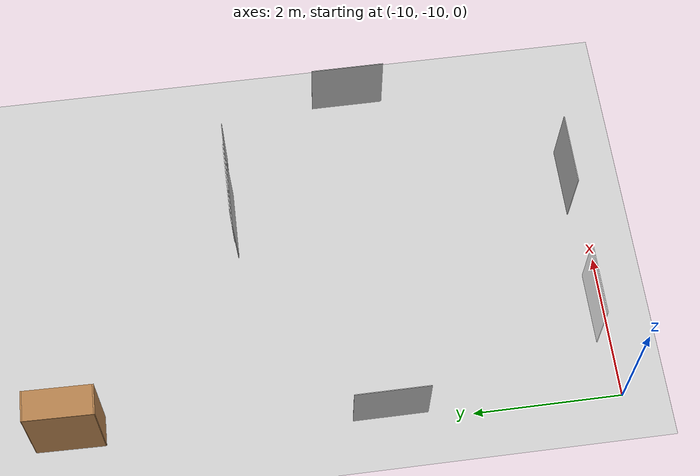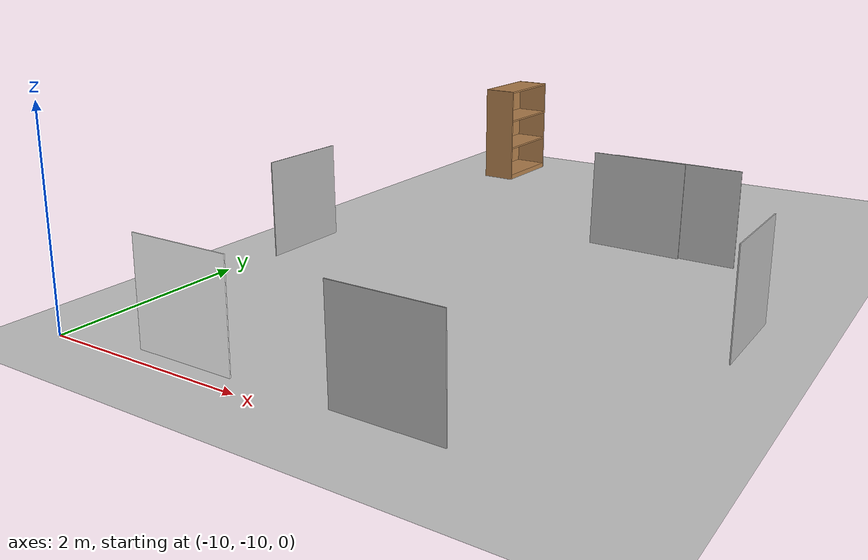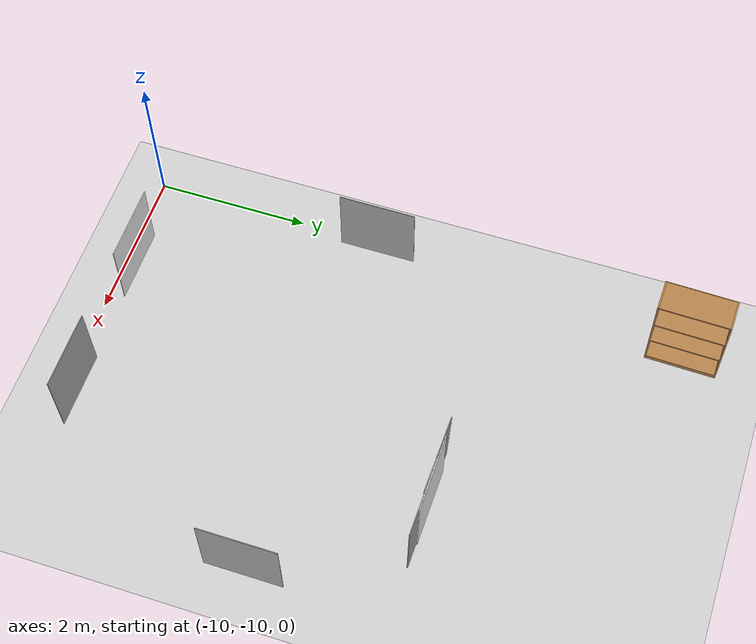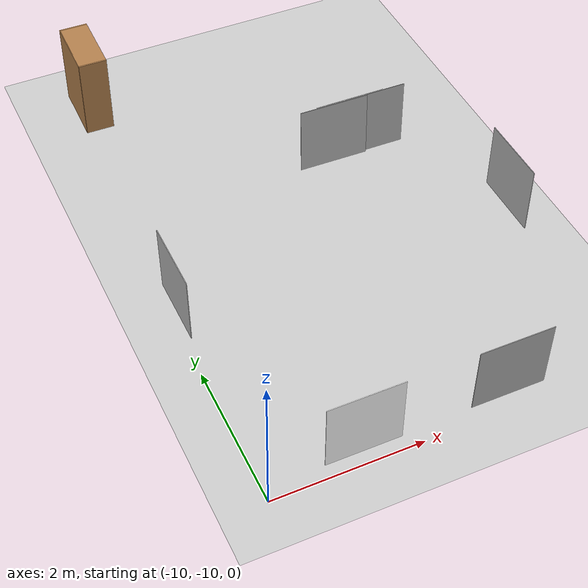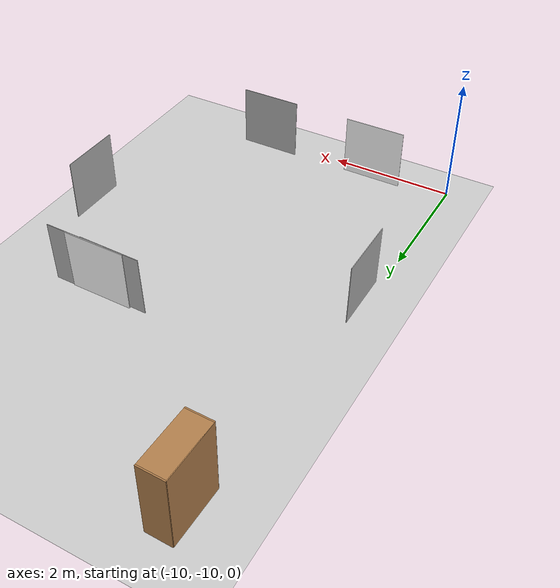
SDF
<sdf version="1.6">
 <world name="default">
  <model name="ground_plane">
   <static>1</static>
   <link name="link">
    <collision name="collision">
     <geometry><plane><normal>0 0 1</normal><size>100 100</size></plane></geometry>
     <surface><friction><ode><mu>100</mu><mu2>50</mu2></ode></friction></surface>
    </collision>
    <visual name="visual">
     <cast_shadows>0</cast_shadows>
     <geometry><plane><normal>0 0 1</normal><size>100 100</size></plane></geometry>
     <material>
      <script><uri>file://media/materials/scripts/gazebo.material</uri><name>Gazebo/Grey</name></script>
     </material>
    </visual>
   </link>
  </model>
  <model name="bookshelf">
   <static>1</static>
   <link name="link">
    <inertial><mass>1</mass></inertial>
    <collision name="back">
     <pose>0 0.005 0.6 0 -0 0</pose>
     <geometry><box><size>0.9 0.01 1.2</size></box></geometry>
    </collision>
    <visual name="visual1">
     <pose>0 0.005 0.6 0 -0 0</pose>
     <geometry><box><size>0.9 0.01 1.2</size></box></geometry>
     <material>
      <script><uri>file://media/materials/scripts/gazebo.material</uri><name>Gazebo/Wood</name></script>
     </material>
    </visual>
    <collision name="left_side">
     <pose>0.45 -0.195 0.6 0 -0 0</pose>
     <geometry><box><size>0.02 0.4 1.2</size></box></geometry>
    </collision>
    <visual name="visual2">
     <pose>0.45 -0.195 0.6 0 -0 0</pose>
     <geometry><box><size>0.02 0.4 1.2</size></box></geometry>
     <material>
      <script><uri>file://media/materials/scripts/gazebo.material</uri><name>Gazebo/Wood</name></script>
     </material>
    </visual>
    <collision name="right_side">
     <pose>-0.45 -0.195 0.6 0 -0 0</pose>
     <geometry><box><size>0.02 0.4 1.2</size></box></geometry>
    </collision>
    <visual name="visual3">
     <pose>-0.45 -0.195 0.6 0 -0 0</pose>
     <geometry><box><size>0.02 0.4 1.2</size></box></geometry>
     <material>
      <script><uri>file://media/materials/scripts/gazebo.material</uri><name>Gazebo/Wood</name></script>
     </material>
    </visual>
    <collision name="bottom">
     <pose>0 -0.195 0.03 0 -0 0</pose>
     <geometry><box><size>0.88 0.4 0.06</size></box></geometry>
    </collision>
    <visual name="visual4">
     <pose>0 -0.195 0.03 0 -0 0</pose>
     <geometry><box><size>0.88 0.4 0.06</size></box></geometry>
     <material>
      <script><uri>file://media/materials/scripts/gazebo.material</uri><name>Gazebo/Wood</name></script>
     </material>
    </visual>
    <collision name="top">
     <pose>0 -0.195 1.19 0 -0 0</pose>
     <geometry><box><size>0.88 0.4 0.02</size></box></geometry>
    </collision>
    <visual name="visual5">
     <pose>0 -0.195 1.19 0 -0 0</pose>
     <geometry><box><size>0.88 0.4 0.02</size></box></geometry>
     <material>
      <script><uri>file://media/materials/scripts/gazebo.material</uri><name>Gazebo/Wood</name></script>
     </material>
    </visual>
    <collision name="low_shelf">
     <pose>0 -0.195 0.43 0 -0 0</pose>
     <geometry><box><size>0.88 0.4 0.02</size></box></geometry>
    </collision>
    <visual name="visual6">
     <pose>0 -0.195 0.43 0 -0 0</pose>
     <geometry><box><size>0.88 0.4 0.02</size></box></geometry>
     <material>
      <script><uri>file://media/materials/scripts/gazebo.material</uri><name>Gazebo/Wood</name></script>
     </material>
    </visual>
    <collision name="high_shelf">
     <pose>0 -0.195 0.8 0 -0 0</pose>
     <geometry><box><size>0.88 0.4 0.02</size></box></geometry>
    </collision>
    <visual name="visual7">
     <pose>0 -0.195 0.8 0 -0 0</pose>
     <geometry><box><size>0.88 0.4 0.02</size></box></geometry>
     <material>
      <script><uri>file://media/materials/scripts/gazebo.material</uri><name>Gazebo/Wood</name></script>
     </material>
    </visual>
   </link>
   <pose>-9.80012 -2.72902 0 0 -0 1.5503</pose>
  </model>
  <model name="electric_plug_1_4">
   <link name="link_0">
    <pose>4e-06 0 0 0 -0 0</pose>
    <inertial>
     <mass>1</mass>
     <inertia>
      <ixx>0.166667</ixx>
      <ixy>0</ixy>
      <ixz>0</ixz>
      <iyy>0.166667</iyy>
      <iyz>0</iyz>
      <izz>0.166667</izz>
     </inertia>
    </inertial>
    <visual name="visual">
     <geometry><box><size>0.01 1 1</size></box></geometry>
     <material>
      <lighting>1</lighting>
      <script>
       <uri>model://electric_plug_2_S/materials/scripts</uri>
       <uri>model://electric_plug_2_S/materials/textures</uri>
       <name>Electric/Plug2S</name>
      </script>
      <ambient>0.3 0.3 0.3 1</ambient>
      <diffuse>0.7 0.7 0.7 1</diffuse>
      <specular>0.01 0.01 0.01 1</specular>
      <emissive>1 1 1 1</emissive>
     </material>
     <cast_shadows>0</cast_shadows>
    </visual>
    <collision name="collision">
     <geometry><box><size>0.01 1 1</size></box></geometry>
     <surface>
      <friction>
       <ode><mu>1</mu><mu2>1</mu2><fdir1>0 0 0</fdir1><slip1>0</slip1><slip2>0</slip2></ode>
       <torsional>
        <coefficient>1</coefficient>
        <patch_radius>0</patch_radius>
        <surface_radius>0</surface_radius>
        <use_patch_radius>1</use_patch_radius>
        <ode><slip>0</slip></ode>
       </torsional>
      </friction>
      <bounce><restitution_coefficient>0</restitution_coefficient><threshold>1e+06</threshold></bounce>
      <contact>
       <collide_without_contact>0</collide_without_contact>
       <collide_without_contact_bitmask>1</collide_without_contact_bitmask>
       <collide_bitmask>1</collide_bitmask>
       <ode>
        <soft_cfm>0</soft_cfm>
        <soft_erp>0.2</soft_erp>
        <kp>1e+13</kp>
        <kd>1</kd>
        <max_vel>0.01</max_vel>
        <min_depth>0</min_depth>
       </ode>
       <bullet>
        <split_impulse>1</split_impulse>
        <split_impulse_penetration_threshold>-0.01</split_impulse_penetration_threshold>
        <soft_cfm>0</soft_cfm>
        <soft_erp>0.2</soft_erp>
        <kp>1e+13</kp>
        <kd>1</kd>
       </bullet>
      </contact>
     </surface>
    </collision>
   </link>
   <static>0</static>
   <pose>-5.10272 -6.97588 0.5 0 -6e-06 4e-06</pose>
  </model>
  <model name="electric_plug_3_N">
   <link name="link_0">
    <pose>4e-06 0 0 0 -0 0</pose>
    <inertial>
     <mass>1</mass>
     <inertia>
      <ixx>0.166667</ixx>
      <ixy>0</ixy>
      <ixz>0</ixz>
      <iyy>0.166667</iyy>
      <iyz>0</iyz>
      <izz>0.166667</izz>
     </inertia>
    </inertial>
    <visual name="visual">
     <geometry><box><size>0.01 1 1</size></box></geometry>
     <material>
      <lighting>1</lighting>
      <script>
       <uri>model://electric_plug_3_N/materials/scripts</uri>
       <uri>model://electric_plug_3_N/materials/textures</uri>
       <name>Electric/Plug3N</name>
      </script>
      <ambient>0.3 0.3 0.3 1</ambient>
      <diffuse>0.7 0.7 0.7 1</diffuse>
      <specular>0.01 0.01 0.01 1</specular>
      <emissive>1 1 1 1</emissive>
     </material>
    </visual>
    <collision name="collision">
     <geometry><box><size>0.01 1 1</size></box></geometry>
     <surface>
      <friction>
       <ode><mu>1</mu><mu2>1</mu2><fdir1>0 0 0</fdir1><slip1>0</slip1><slip2>0</slip2></ode>
       <torsional>
        <coefficient>1</coefficient>
        <patch_radius>0</patch_radius>
        <surface_radius>0</surface_radius>
        <use_patch_radius>1</use_patch_radius>
        <ode><slip>0</slip></ode>
       </torsional>
      </friction>
      <bounce><restitution_coefficient>0</restitution_coefficient><threshold>1e+06</threshold></bounce>
      <contact>
       <collide_without_contact>0</collide_without_contact>
       <collide_without_contact_bitmask>1</collide_without_contact_bitmask>
       <collide_bitmask>1</collide_bitmask>
       <ode>
        <soft_cfm>0</soft_cfm>
        <soft_erp>0.2</soft_erp>
        <kp>1e+13</kp>
        <kd>1</kd>
        <max_vel>0.01</max_vel>
        <min_depth>0</min_depth>
       </ode>
       <bullet>
        <split_impulse>1</split_impulse>
        <split_impulse_penetration_threshold>-0.01</split_impulse_penetration_threshold>
        <soft_cfm>0</soft_cfm>
        <soft_erp>0.2</soft_erp>
        <kp>1e+13</kp>
        <kd>1</kd>
       </bullet>
      </contact>
     </surface>
    </collision>
   </link>
   <static>0</static>
   <pose>-6.76501 -9.80279 0.500009 9e-06 -0.016688 1.5708</pose>
  </model>
  <model name="electric_plug_1_S">
   <link name="link_0">
    <pose>4e-06 0 0 0 -0 0</pose>
    <inertial>
     <mass>1</mass>
     <inertia>
      <ixx>0.166667</ixx>
      <ixy>0</ixy>
      <ixz>0</ixz>
      <iyy>0.166667</iyy>
      <iyz>0</iyz>
      <izz>0.166667</izz>
     </inertia>
    </inertial>
    <visual name="visual">
     <geometry><box><size>0.01 1 1</size></box></geometry>
     <material>
      <lighting>1</lighting>
      <script>
       <uri>model://electric_plug_1_S/materials/scripts</uri>
       <uri>model://electric_plug_1_S/materials/textures</uri>
       <name>Electric/Plug1S</name>
      </script>
      <ambient>0.3 0.3 0.3 1</ambient>
      <diffuse>0.7 0.7 0.7 1</diffuse>
      <specular>0.01 0.01 0.01 1</specular>
      <emissive>1 1 1 1</emissive>
     </material>
     <cast_shadows>0</cast_shadows>
    </visual>
    <collision name="collision">
     <geometry><box><size>0.01 1 1</size></box></geometry>
     <surface>
      <friction>
       <ode><mu>1</mu><mu2>1</mu2><fdir1>0 0 0</fdir1><slip1>0</slip1><slip2>0</slip2></ode>
       <torsional>
        <coefficient>1</coefficient>
        <patch_radius>0</patch_radius>
        <surface_radius>0</surface_radius>
        <use_patch_radius>1</use_patch_radius>
        <ode><slip>0</slip></ode>
       </torsional>
      </friction>
      <bounce><restitution_coefficient>0</restitution_coefficient><threshold>1e+06</threshold></bounce>
      <contact>
       <collide_without_contact>0</collide_without_contact>
       <collide_without_contact_bitmask>1</collide_without_contact_bitmask>
       <collide_bitmask>1</collide_bitmask>
       <ode>
        <soft_cfm>0</soft_cfm>
        <soft_erp>0.2</soft_erp>
        <kp>1e+13</kp>
        <kd>1</kd>
        <max_vel>0.01</max_vel>
        <min_depth>0</min_depth>
       </ode>
       <bullet>
        <split_impulse>1</split_impulse>
        <split_impulse_penetration_threshold>-0.01</split_impulse_penetration_threshold>
        <soft_cfm>0</soft_cfm>
        <soft_erp>0.2</soft_erp>
        <kp>1e+13</kp>
        <kd>1</kd>
       </bullet>
      </contact>
     </surface>
    </collision>
   </link>
   <static>0</static>
   <pose>-9.89865 -6.91577 0.500019 0 -0.014776 -4e-06</pose>
  </model>
  <model name="Gas_5">
   <link name="link_0">
    <pose>4e-06 0 0 0 -0 0</pose>
    <inertial>
     <mass>1</mass>
     <inertia>
      <ixx>0.166667</ixx>
      <ixy>0</ixy>
      <ixz>0</ixz>
      <iyy>0.166667</iyy>
      <iyz>0</iyz>
      <izz>0.166667</izz>
     </inertia>
    </inertial>
    <visual name="visual">
     <geometry><box><size>0.01 1 1</size></box></geometry>
     <material>
      <lighting>1</lighting>
      <script>
       <uri>model://gas_5_N/materials/scripts</uri>
       <uri>model://gas_5_N/materials/textures</uri>
       <name>Gas/Gas5N</name>
      </script>
      <ambient>1 1 1 1</ambient>
      <diffuse>1 1 1 1</diffuse>
      <specular>0.01 0.01 0.01 1</specular>
      <emissive>1 1 1 1</emissive>
     </material>
     <cast_shadows>0</cast_shadows>
    </visual>
    <collision name="collision">
     <geometry><box><size>0.01 1 1</size></box></geometry>
     <surface>
      <friction>
       <ode><mu>1</mu><mu2>1</mu2><fdir1>0 0 0</fdir1><slip1>0</slip1><slip2>0</slip2></ode>
       <torsional>
        <coefficient>1</coefficient>
        <patch_radius>0</patch_radius>
        <surface_radius>0</surface_radius>
        <use_patch_radius>1</use_patch_radius>
        <ode><slip>0</slip></ode>
       </torsional>
      </friction>
      <bounce><restitution_coefficient>0</restitution_coefficient><threshold>1e+06</threshold></bounce>
      <contact>
       <collide_without_contact>0</collide_without_contact>
       <collide_without_contact_bitmask>1</collide_without_contact_bitmask>
       <collide_bitmask>1</collide_bitmask>
       <ode>
        <soft_cfm>0</soft_cfm>
        <soft_erp>0.2</soft_erp>
        <kp>1e+13</kp>
        <kd>1</kd>
        <max_vel>0.01</max_vel>
        <min_depth>0</min_depth>
       </ode>
       <bullet>
        <split_impulse>1</split_impulse>
        <split_impulse_penetration_threshold>-0.01</split_impulse_penetration_threshold>
        <soft_cfm>0</soft_cfm>
        <soft_erp>0.2</soft_erp>
        <kp>1e+13</kp>
        <kd>1</kd>
       </bullet>
      </contact>
     </surface>
    </collision>
   </link>
   <static>0</static>
   <pose>-6.59286 -5.14286 0.499983 1e-06 -0.021573 -1.58001</pose>
  </model>
  <model name="fire_2_0">
   <link name="link_0">
    <pose>4e-06 0 0 0 -0 0</pose>
    <inertial>
     <mass>1</mass>
     <inertia>
      <ixx>0.166667</ixx>
      <ixy>0</ixy>
      <ixz>0</ixz>
      <iyy>0.166667</iyy>
      <iyz>0</iyz>
      <izz>0.166667</izz>
     </inertia>
    </inertial>
    <visual name="visual">
     <geometry><box><size>0.01 1 1</size></box></geometry>
     <material>
      <lighting>1</lighting>
      <script>
       <uri>model://fire_2/materials/scripts</uri>
       <uri>model://fire_2/materials/textures</uri>
       <name>Fire/Fire2</name>
      </script>
      <ambient>0.3 0.3 0.3 1</ambient>
      <diffuse>0.7 0.7 0.7 1</diffuse>
      <specular>0.01 0.01 0.01 1</specular>
      <emissive>1 1 1 1</emissive>
     </material>
     <cast_shadows>0</cast_shadows>
    </visual>
    <collision name="collision">
     <geometry><box><size>0.01 1 1</size></box></geometry>
     <surface>
      <friction>
       <ode><mu>1</mu><mu2>1</mu2><fdir1>0 0 0</fdir1><slip1>0</slip1><slip2>0</slip2></ode>
       <torsional>
        <coefficient>1</coefficient>
        <patch_radius>0</patch_radius>
        <surface_radius>0</surface_radius>
        <use_patch_radius>1</use_patch_radius>
        <ode><slip>0</slip></ode>
       </torsional>
      </friction>
      <bounce><restitution_coefficient>0</restitution_coefficient><threshold>1e+06</threshold></bounce>
      <contact>
       <collide_without_contact>0</collide_without_contact>
       <collide_without_contact_bitmask>1</collide_without_contact_bitmask>
       <collide_bitmask>1</collide_bitmask>
       <ode>
        <soft_cfm>0</soft_cfm>
        <soft_erp>0.2</soft_erp>
        <kp>1e+13</kp>
        <kd>1</kd>
        <max_vel>0.01</max_vel>
        <min_depth>0</min_depth>
       </ode>
       <bullet>
        <split_impulse>1</split_impulse>
        <split_impulse_penetration_threshold>-0.01</split_impulse_penetration_threshold>
        <soft_cfm>0</soft_cfm>
        <soft_erp>0.2</soft_erp>
        <kp>1e+13</kp>
        <kd>1</kd>
       </bullet>
      </contact>
     </surface>
    </collision>
   </link>
   <static>0</static>
   <pose>-6.84353 -5.16904 0.499799 0 -0.040047 -1.59043</pose>
  </model>
  <model name="fire_4">
   <link name="link_0">
    <pose>4e-06 0 0 0 -0 0</pose>
    <inertial>
     <mass>1</mass>
     <inertia>
      <ixx>0.166667</ixx>
      <ixy>0</ixy>
      <ixz>0</ixz>
      <iyy>0.166667</iyy>
      <iyz>0</iyz>
      <izz>0.166667</izz>
     </inertia>
    </inertial>
    <visual name="visual">
     <geometry><box><size>0.01 1 1</size></box></geometry>
     <material>
      <lighting>1</lighting>
      <script>
       <uri>model://fire_4/materials/scripts</uri>
       <uri>model://fire_4/materials/textures</uri>
       <name>Fire/Fire4</name>
      </script>
      <ambient>0.3 0.3 0.3 1</ambient>
      <diffuse>0.7 0.7 0.7 1</diffuse>
      <specular>0.01 0.01 0.01 1</specular>
      <emissive>1 1 1 1</emissive>
     </material>
     <cast_shadows>0</cast_shadows>
    </visual>
    <collision name="collision">
     <geometry><box><size>0.01 1 1</size></box></geometry>
     <surface>
      <friction>
       <ode><mu>1</mu><mu2>1</mu2><fdir1>0 0 0</fdir1><slip1>0</slip1><slip2>0</slip2></ode>
       <torsional>
        <coefficient>1</coefficient>
        <patch_radius>0</patch_radius>
        <surface_radius>0</surface_radius>
        <use_patch_radius>1</use_patch_radius>
        <ode><slip>0</slip></ode>
       </torsional>
      </friction>
      <bounce><restitution_coefficient>0</restitution_coefficient><threshold>1e+06</threshold></bounce>
      <contact>
       <collide_without_contact>0</collide_without_contact>
       <collide_without_contact_bitmask>1</collide_without_contact_bitmask>
       <collide_bitmask>1</collide_bitmask>
       <ode>
        <soft_cfm>0</soft_cfm>
        <soft_erp>0.2</soft_erp>
        <kp>1e+13</kp>
        <kd>1</kd>
        <max_vel>0.01</max_vel>
        <min_depth>0</min_depth>
       </ode>
       <bullet>
        <split_impulse>1</split_impulse>
        <split_impulse_penetration_threshold>-0.01</split_impulse_penetration_threshold>
        <soft_cfm>0</soft_cfm>
        <soft_erp>0.2</soft_erp>
        <kp>1e+13</kp>
        <kd>1</kd>
       </bullet>
      </contact>
     </surface>
    </collision>
   </link>
   <static>0</static>
   <pose>-6.27074 -5.15773 0.499992 0 0.021573 1.55781</pose>
  </model>
  <model name="Gas_2_1">
   <link name="link_0">
    <pose>4e-06 0 0 0 -0 0</pose>
    <inertial>
     <mass>1</mass>
     <inertia>
      <ixx>0.166667</ixx>
      <ixy>0</ixy>
      <ixz>0</ixz>
      <iyy>0.166667</iyy>
      <iyz>0</iyz>
      <izz>0.166667</izz>
     </inertia>
    </inertial>
    <visual name="visual">
     <geometry><box><size>0.01 1 1</size></box></geometry>
     <material>
      <lighting>1</lighting>
      <script>
       <uri>model://gas_2_N/materials/scripts</uri>
       <uri>model://gas_2_N/materials/textures</uri>
       <name>Gas/Gas2N</name>
      </script>
      <ambient>1 1 1 1</ambient>
      <diffuse>1 1 1 1</diffuse>
      <specular>0.01 0.01 0.01 1</specular>
      <emissive>1 1 1 1</emissive>
     </material>
     <cast_shadows>0</cast_shadows>
    </visual>
    <collision name="collision">
     <geometry><box><size>0.01 1 1</size></box></geometry>
     <surface>
      <friction>
       <ode><mu>1</mu><mu2>1</mu2><fdir1>0 0 0</fdir1><slip1>0</slip1><slip2>0</slip2></ode>
       <torsional>
        <coefficient>1</coefficient>
        <patch_radius>0</patch_radius>
        <surface_radius>0</surface_radius>
        <use_patch_radius>1</use_patch_radius>
        <ode><slip>0</slip></ode>
       </torsional>
      </friction>
      <bounce><restitution_coefficient>0</restitution_coefficient><threshold>1e+06</threshold></bounce>
      <contact>
       <collide_without_contact>0</collide_without_contact>
       <collide_without_contact_bitmask>1</collide_without_contact_bitmask>
       <collide_bitmask>1</collide_bitmask>
       <ode>
        <soft_cfm>0</soft_cfm>
        <soft_erp>0.2</soft_erp>
        <kp>1e+13</kp>
        <kd>1</kd>
        <max_vel>0.01</max_vel>
        <min_depth>0</min_depth>
       </ode>
       <bullet>
        <split_impulse>1</split_impulse>
        <split_impulse_penetration_threshold>-0.01</split_impulse_penetration_threshold>
        <soft_cfm>0</soft_cfm>
        <soft_erp>0.2</soft_erp>
        <kp>1e+13</kp>
        <kd>1</kd>
       </bullet>
      </contact>
     </surface>
    </collision>
   </link>
   <static>0</static>
   <pose>-8.70829 -9.81367 0.50002 0 -0.005761 -1.57012</pose>
  </model>
 </world>
</sdf>
